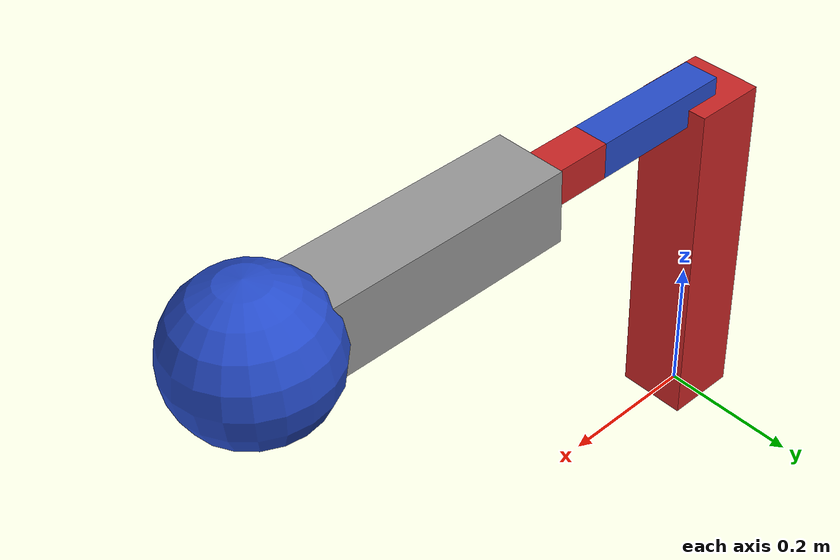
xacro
<robot name="crank">
  <link name="link1"> <!-- left most red link in the animation -->
    <inertial>
      <mass value="100.0" />
      <!-- center of mass (com) is defined w.r.t. link local coordinate system -->
      <origin xyz="0 0 0" />
      <inertia  ixx="10.0" ixy="0.0"  ixz="0.0"  iyy="10.0"  iyz="0.0"  izz="10.0" />
    </inertial>
    <visual>
      <origin xyz="0 0 0.25" rpy="0 0 0" />
      <geometry>
        <box size="0.1 0.1 0.5"/>
      </geometry>
    </visual>
    <collision>
      <origin xyz="0 0 0.025" rpy="0 0 0" />
      <geometry>
        <box size="1.0 1.0 0.05"/>
      </geometry>
    </collision>
  </link>
  <joint name="link1_link2_joint" type="continuous">
    <parent link="link1" />
    <child link="link2" />
    <origin xyz="0 0 0.5" rpy="0 0 0" />
    <axis xyz="0 1 0"/>
  </joint>
  <link name="link2"> <!-- blue link in the animation -->
    <inertial>
      <mass value="1.0" />
      <!-- center of mass (com) is defined w.r.t. link local coordinate system -->
      <origin xyz="0.1 0 0" />
      <inertia  ixx="0.01" ixy="0.0"  ixz="0.0"  iyy="0.01"  iyz="0.0"  izz="0.01" />
    </inertial>
    <visual>
      <origin xyz="0.1 0 0" rpy="0 0 0" />
      <geometry>
        <box size="0.2 0.05 0.05"/>
      </geometry>
    </visual>
    <collision>
      <origin xyz="0.1 0 0" rpy="0 0 0" />
      <geometry>
        <box size="0.2 0.05 0.05"/>
      </geometry>
    </collision>
  </link>
  <joint name="link2_link3_joint" type="continuous">
    <parent link="link2" />
    <child link="link3" />
    <origin xyz="0.2 0 0" rpy="0 0 0" />
    <axis xyz="0 1 0"/>
  </joint>
  <link name="link3"> <!-- red sliding link in the animation -->
    <inertial>
      <mass value="1.0" />
      <origin xyz="0.25 0 0" />
      <inertia  ixx="0.01" ixy="0.0"  ixz="0.0"  iyy="0.01"  iyz="0.0"  izz="0.01" />
    </inertial>
    <visual>
      <origin xyz="0.25 0 0" rpy="0 0 0" />
      <geometry>
        <box size="0.5 0.05 0.05"/>
      </geometry>
    </visual>
    <collision>
      <origin xyz="0.25 0 0" rpy="0 0 0" />
      <geometry>
        <box size="0.5 0.05 0.05"/>
      </geometry>
    </collision>
  </link>
  <joint name="link3_link4_joint" type="continuous">
    <parent link="link3" />
    <child link="link4" />
    <origin xyz="0.5 0 0" rpy="0 0 0" />
    <axis xyz="0 1 0"/>
  </joint>
  <link name="link4"> <!-- right most gray link in the animation -->
    <inertial>
      <mass value="1.0" />
      <origin xyz="0 0 0" />
      <inertia  ixx="0.01" ixy="0.0"  ixz="0.0"  iyy="0.01"  iyz="0.0"  izz="0.01" />
    </inertial>
    <visual>
      <origin xyz="0 0 0" rpy="0 0 0" />
      <geometry>
        <sphere radius="0.1"/>
      </geometry>
    </visual>
    <collision>
      <origin xyz="0 0 0" rpy="0 0 0" />
      <geometry>
        <sphere radius="0.1"/>
      </geometry>
    </collision>
  </link>
  <joint name="link4_link5_joint" type="prismatic">
    <parent link="link4" />
    <child link="link5" />
    <origin xyz="0 0 0" rpy="0 0 0" />
    <axis xyz="1 0 0"/>
    <limit upper="0.4" lower="0" effort="1000.00" velocity="1000.00"/>
  </joint>
  <link name="link5"> <!-- right most gray link in the animation -->
    <inertial>
      <mass value="100.0" />
      <origin xyz="0 0 0" />
      <inertia  ixx="10.0" ixy="0.0"  ixz="0.0"  iyy="10.0"  iyz="0.0"  izz="10.0" />
    </inertial>
    <visual>
      <origin xyz="-0.2 0 0" rpy="0 0 0" />
      <geometry>
        <box size="0.4 0.1 0.1"/>
      </geometry>
    </visual>
    <collision>
      <origin xyz="0 0 -0.475" rpy="0 0 0" />
      <geometry>
        <box size="1.0 1.0 0.05"/>
      </geometry>
    </collision>
  </link>
  <gazebo reference="link1">
    <turnGravityOff>false</turnGravityOff>
    <material>Gazebo/Red</material>
  </gazebo>
  <gazebo reference="link2">
    <turnGravityOff>true</turnGravityOff>
    <material>Gazebo/Blue</material>
  </gazebo>
  <gazebo reference="link3">
    <turnGravityOff>true</turnGravityOff>
    <material>Gazebo/Red</material>
  </gazebo>
  <gazebo reference="link4">
    <turnGravityOff>true</turnGravityOff>
    <material>Gazebo/Blue</material>
  </gazebo>
  <gazebo reference="link5">
    <turnGravityOff>false</turnGravityOff>
    <material>Gazebo/Gray</material>
  </gazebo>
</robot>
